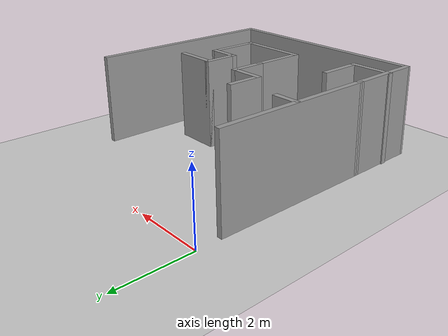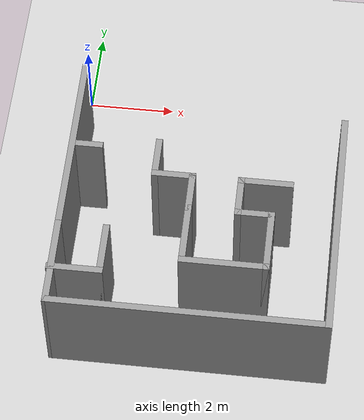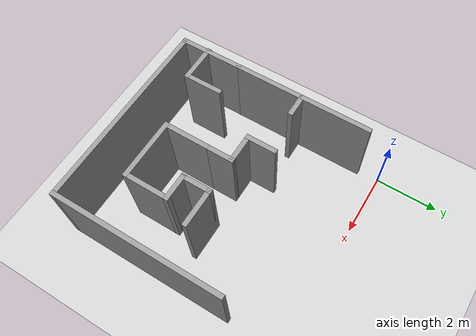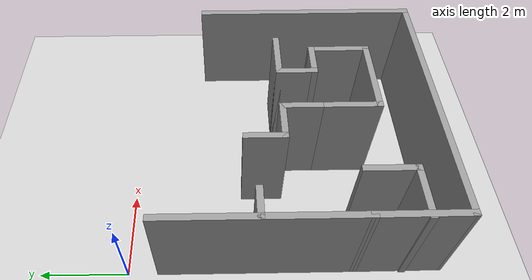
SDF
<sdf version="1.6">
 <world name="default">
  <model name="ground_plane">
   <static>1</static>
   <link name="link">
    <collision name="collision">
     <geometry><plane><normal>0 0 1</normal><size>100 100</size></plane></geometry>
     <surface>
      <contact><collide_bitmask>65535</collide_bitmask></contact>
      <friction><ode><mu>100</mu><mu2>50</mu2></ode></friction>
     </surface>
    </collision>
    <visual name="visual">
     <cast_shadows>0</cast_shadows>
     <geometry><plane><normal>0 0 1</normal><size>100 100</size></plane></geometry>
     <material>
      <script><uri>file://media/materials/scripts/gazebo.material</uri><name>Gazebo/Grey</name></script>
     </material>
    </visual>
   </link>
  </model>
  <model name="enclosed_wall_final">
   <link name="Wall_12">
    <pose>-1.30535 -0.736743 0 0 0 -1.5708</pose>
    <visual name="Wall_12_Visual">
     <pose>0 0 1.25 0 -0 0</pose>
     <geometry><box><size>1 0.15 2.5</size></box></geometry>
     <material>
      <script><uri>file://media/materials/scripts/gazebo.material</uri><name>Gazebo/Grey</name></script>
      <ambient>1 1 1 1</ambient>
      <shader type="pixel"/>
     </material>
     <meta><layer>0</layer></meta>
    </visual>
    <collision name="Wall_12_Collision">
     <pose>0 0 1.25 0 -0 0</pose>
     <geometry><box><size>1 0.15 2.5</size></box></geometry>
     <surface>
      <friction>
       <ode><mu>1</mu><mu2>1</mu2><fdir1>0 0 0</fdir1><slip1>0</slip1><slip2>0</slip2></ode>
       <torsional>
        <coefficient>1</coefficient>
        <patch_radius>0</patch_radius>
        <surface_radius>0</surface_radius>
        <use_patch_radius>1</use_patch_radius>
        <ode><slip>0</slip></ode>
       </torsional>
      </friction>
      <bounce><restitution_coefficient>0</restitution_coefficient><threshold>1e+06</threshold></bounce>
      <contact>
       <collide_without_contact>0</collide_without_contact>
       <collide_without_contact_bitmask>1</collide_without_contact_bitmask>
       <collide_bitmask>1</collide_bitmask>
       <ode>
        <soft_cfm>0</soft_cfm>
        <soft_erp>0.2</soft_erp>
        <kp>1e+13</kp>
        <kd>1</kd>
        <max_vel>0.01</max_vel>
        <min_depth>0</min_depth>
       </ode>
       <bullet>
        <split_impulse>1</split_impulse>
        <split_impulse_penetration_threshold>-0.01</split_impulse_penetration_threshold>
        <soft_cfm>0</soft_cfm>
        <soft_erp>0.2</soft_erp>
        <kp>1e+13</kp>
        <kd>1</kd>
       </bullet>
      </contact>
     </surface>
    </collision>
   </link>
   <link name="Wall_13">
    <pose>-0.880348 -1.16174 0 0 -0 0</pose>
    <visual name="Wall_13_Visual">
     <pose>0 0 1.25 0 -0 0</pose>
     <geometry><box><size>1 0.15 2.5</size></box></geometry>
     <material>
      <script><uri>file://media/materials/scripts/gazebo.material</uri><name>Gazebo/Grey</name></script>
      <ambient>1 1 1 1</ambient>
      <shader type="pixel"/>
     </material>
     <meta><layer>0</layer></meta>
    </visual>
    <collision name="Wall_13_Collision">
     <pose>0 0 1.25 0 -0 0</pose>
     <geometry><box><size>1 0.15 2.5</size></box></geometry>
     <surface>
      <friction>
       <ode><mu>1</mu><mu2>1</mu2><fdir1>0 0 0</fdir1><slip1>0</slip1><slip2>0</slip2></ode>
       <torsional>
        <coefficient>1</coefficient>
        <patch_radius>0</patch_radius>
        <surface_radius>0</surface_radius>
        <use_patch_radius>1</use_patch_radius>
        <ode><slip>0</slip></ode>
       </torsional>
      </friction>
      <bounce><restitution_coefficient>0</restitution_coefficient><threshold>1e+06</threshold></bounce>
      <contact>
       <collide_without_contact>0</collide_without_contact>
       <collide_without_contact_bitmask>1</collide_without_contact_bitmask>
       <collide_bitmask>1</collide_bitmask>
       <ode>
        <soft_cfm>0</soft_cfm>
        <soft_erp>0.2</soft_erp>
        <kp>1e+13</kp>
        <kd>1</kd>
        <max_vel>0.01</max_vel>
        <min_depth>0</min_depth>
       </ode>
       <bullet>
        <split_impulse>1</split_impulse>
        <split_impulse_penetration_threshold>-0.01</split_impulse_penetration_threshold>
        <soft_cfm>0</soft_cfm>
        <soft_erp>0.2</soft_erp>
        <kp>1e+13</kp>
        <kd>1</kd>
       </bullet>
      </contact>
     </surface>
    </collision>
   </link>
   <link name="Wall_14">
    <pose>-0.455348 -1.58674 0 0 0 -1.5708</pose>
    <visual name="Wall_14_Visual">
     <pose>0 0 1.25 0 -0 0</pose>
     <geometry><box><size>1 0.15 2.5</size></box></geometry>
     <material>
      <script><uri>file://media/materials/scripts/gazebo.material</uri><name>Gazebo/Grey</name></script>
      <ambient>1 1 1 1</ambient>
      <shader type="pixel"/>
     </material>
     <meta><layer>0</layer></meta>
    </visual>
    <collision name="Wall_14_Collision">
     <pose>0 0 1.25 0 -0 0</pose>
     <geometry><box><size>1 0.15 2.5</size></box></geometry>
     <surface>
      <friction>
       <ode><mu>1</mu><mu2>1</mu2><fdir1>0 0 0</fdir1><slip1>0</slip1><slip2>0</slip2></ode>
       <torsional>
        <coefficient>1</coefficient>
        <patch_radius>0</patch_radius>
        <surface_radius>0</surface_radius>
        <use_patch_radius>1</use_patch_radius>
        <ode><slip>0</slip></ode>
       </torsional>
      </friction>
      <bounce><restitution_coefficient>0</restitution_coefficient><threshold>1e+06</threshold></bounce>
      <contact>
       <collide_without_contact>0</collide_without_contact>
       <collide_without_contact_bitmask>1</collide_without_contact_bitmask>
       <collide_bitmask>1</collide_bitmask>
       <ode>
        <soft_cfm>0</soft_cfm>
        <soft_erp>0.2</soft_erp>
        <kp>1e+13</kp>
        <kd>1</kd>
        <max_vel>0.01</max_vel>
        <min_depth>0</min_depth>
       </ode>
       <bullet>
        <split_impulse>1</split_impulse>
        <split_impulse_penetration_threshold>-0.01</split_impulse_penetration_threshold>
        <soft_cfm>0</soft_cfm>
        <soft_erp>0.2</soft_erp>
        <kp>1e+13</kp>
        <kd>1</kd>
       </bullet>
      </contact>
     </surface>
    </collision>
   </link>
   <link name="Wall_16">
    <pose>0.644652 -1.58674 0 0 -0 1.5708</pose>
    <visual name="Wall_16_Visual">
     <pose>0 0 1.25 0 -0 0</pose>
     <geometry><box><size>1 0.15 2.5</size></box></geometry>
     <material>
      <script><uri>file://media/materials/scripts/gazebo.material</uri><name>Gazebo/Grey</name></script>
      <ambient>1 1 1 1</ambient>
      <shader type="pixel"/>
     </material>
     <meta><layer>0</layer></meta>
    </visual>
    <collision name="Wall_16_Collision">
     <pose>0 0 1.25 0 -0 0</pose>
     <geometry><box><size>1 0.15 2.5</size></box></geometry>
     <surface>
      <friction>
       <ode><mu>1</mu><mu2>1</mu2><fdir1>0 0 0</fdir1><slip1>0</slip1><slip2>0</slip2></ode>
       <torsional>
        <coefficient>1</coefficient>
        <patch_radius>0</patch_radius>
        <surface_radius>0</surface_radius>
        <use_patch_radius>1</use_patch_radius>
        <ode><slip>0</slip></ode>
       </torsional>
      </friction>
      <bounce><restitution_coefficient>0</restitution_coefficient><threshold>1e+06</threshold></bounce>
      <contact>
       <collide_without_contact>0</collide_without_contact>
       <collide_without_contact_bitmask>1</collide_without_contact_bitmask>
       <collide_bitmask>1</collide_bitmask>
       <ode>
        <soft_cfm>0</soft_cfm>
        <soft_erp>0.2</soft_erp>
        <kp>1e+13</kp>
        <kd>1</kd>
        <max_vel>0.01</max_vel>
        <min_depth>0</min_depth>
       </ode>
       <bullet>
        <split_impulse>1</split_impulse>
        <split_impulse_penetration_threshold>-0.01</split_impulse_penetration_threshold>
        <soft_cfm>0</soft_cfm>
        <soft_erp>0.2</soft_erp>
        <kp>1e+13</kp>
        <kd>1</kd>
       </bullet>
      </contact>
     </surface>
    </collision>
   </link>
   <link name="Wall_17">
    <pose>1.19465 -1.16174 0 0 -0 0</pose>
    <visual name="Wall_17_Visual">
     <pose>0 0 1.25 0 -0 0</pose>
     <geometry><box><size>1.25 0.15 2.5</size></box></geometry>
     <material>
      <script><uri>file://media/materials/scripts/gazebo.material</uri><name>Gazebo/Grey</name></script>
      <ambient>1 1 1 1</ambient>
      <shader type="pixel"/>
     </material>
     <meta><layer>0</layer></meta>
    </visual>
    <collision name="Wall_17_Collision">
     <pose>0 0 1.25 0 -0 0</pose>
     <geometry><box><size>1.25 0.15 2.5</size></box></geometry>
     <surface>
      <friction>
       <ode><mu>1</mu><mu2>1</mu2><fdir1>0 0 0</fdir1><slip1>0</slip1><slip2>0</slip2></ode>
       <torsional>
        <coefficient>1</coefficient>
        <patch_radius>0</patch_radius>
        <surface_radius>0</surface_radius>
        <use_patch_radius>1</use_patch_radius>
        <ode><slip>0</slip></ode>
       </torsional>
      </friction>
      <bounce><restitution_coefficient>0</restitution_coefficient><threshold>1e+06</threshold></bounce>
      <contact>
       <collide_without_contact>0</collide_without_contact>
       <collide_without_contact_bitmask>1</collide_without_contact_bitmask>
       <collide_bitmask>1</collide_bitmask>
       <ode>
        <soft_cfm>0</soft_cfm>
        <soft_erp>0.2</soft_erp>
        <kp>1e+13</kp>
        <kd>1</kd>
        <max_vel>0.01</max_vel>
        <min_depth>0</min_depth>
       </ode>
       <bullet>
        <split_impulse>1</split_impulse>
        <split_impulse_penetration_threshold>-0.01</split_impulse_penetration_threshold>
        <soft_cfm>0</soft_cfm>
        <soft_erp>0.2</soft_erp>
        <kp>1e+13</kp>
        <kd>1</kd>
       </bullet>
      </contact>
     </surface>
    </collision>
   </link>
   <link name="Wall_20">
    <pose>2.84465 -2.00196 0 0 0 -1.5708</pose>
    <visual name="Wall_20_Visual">
     <pose>0 0 1.25 0 -0 0</pose>
     <geometry><box><size>5.46957 0.15 2.5</size></box></geometry>
     <material>
      <script><uri>file://media/materials/scripts/gazebo.material</uri><name>Gazebo/Grey</name></script>
      <ambient>1 1 1 1</ambient>
      <shader type="pixel"/>
     </material>
     <meta><layer>0</layer></meta>
    </visual>
    <collision name="Wall_20_Collision">
     <pose>0 0 1.25 0 -0 0</pose>
     <geometry><box><size>5.46957 0.15 2.5</size></box></geometry>
     <surface>
      <friction>
       <ode><mu>1</mu><mu2>1</mu2><fdir1>0 0 0</fdir1><slip1>0</slip1><slip2>0</slip2></ode>
       <torsional>
        <coefficient>1</coefficient>
        <patch_radius>0</patch_radius>
        <surface_radius>0</surface_radius>
        <use_patch_radius>1</use_patch_radius>
        <ode><slip>0</slip></ode>
       </torsional>
      </friction>
      <bounce><restitution_coefficient>0</restitution_coefficient><threshold>1e+06</threshold></bounce>
      <contact>
       <collide_without_contact>0</collide_without_contact>
       <collide_without_contact_bitmask>1</collide_without_contact_bitmask>
       <collide_bitmask>1</collide_bitmask>
       <ode>
        <soft_cfm>0</soft_cfm>
        <soft_erp>0.2</soft_erp>
        <kp>1e+13</kp>
        <kd>1</kd>
        <max_vel>0.01</max_vel>
        <min_depth>0</min_depth>
       </ode>
       <bullet>
        <split_impulse>1</split_impulse>
        <split_impulse_penetration_threshold>-0.01</split_impulse_penetration_threshold>
        <soft_cfm>0</soft_cfm>
        <soft_erp>0.2</soft_erp>
        <kp>1e+13</kp>
        <kd>1</kd>
       </bullet>
      </contact>
     </surface>
    </collision>
   </link>
   <link name="Wall_21">
    <pose>-0.205348 -4.66174 0 0 -0 3.14159</pose>
    <visual name="Wall_21_Visual">
     <pose>0 0 1.25 0 -0 0</pose>
     <geometry><box><size>6.25 0.15 2.5</size></box></geometry>
     <material>
      <script><uri>file://media/materials/scripts/gazebo.material</uri><name>Gazebo/Grey</name></script>
      <ambient>1 1 1 1</ambient>
      <shader type="pixel"/>
     </material>
     <meta><layer>0</layer></meta>
    </visual>
    <collision name="Wall_21_Collision">
     <pose>0 0 1.25 0 -0 0</pose>
     <geometry><box><size>6.25 0.15 2.5</size></box></geometry>
     <surface>
      <friction>
       <ode><mu>1</mu><mu2>1</mu2><fdir1>0 0 0</fdir1><slip1>0</slip1><slip2>0</slip2></ode>
       <torsional>
        <coefficient>1</coefficient>
        <patch_radius>0</patch_radius>
        <surface_radius>0</surface_radius>
        <use_patch_radius>1</use_patch_radius>
        <ode><slip>0</slip></ode>
       </torsional>
      </friction>
      <bounce><restitution_coefficient>0</restitution_coefficient><threshold>1e+06</threshold></bounce>
      <contact>
       <collide_without_contact>0</collide_without_contact>
       <collide_without_contact_bitmask>1</collide_without_contact_bitmask>
       <collide_bitmask>1</collide_bitmask>
       <ode>
        <soft_cfm>0</soft_cfm>
        <soft_erp>0.2</soft_erp>
        <kp>1e+13</kp>
        <kd>1</kd>
        <max_vel>0.01</max_vel>
        <min_depth>0</min_depth>
       </ode>
       <bullet>
        <split_impulse>1</split_impulse>
        <split_impulse_penetration_threshold>-0.01</split_impulse_penetration_threshold>
        <soft_cfm>0</soft_cfm>
        <soft_erp>0.2</soft_erp>
        <kp>1e+13</kp>
        <kd>1</kd>
       </bullet>
      </contact>
     </surface>
    </collision>
   </link>
   <link name="Wall_22">
    <pose>-3.25992 -3.68967 0 0 -0 1.5755</pose>
    <visual name="Wall_22_Visual">
     <pose>0 0 1.25 0 -0 0</pose>
     <geometry><box><size>2.09416 0.15 2.5</size></box></geometry>
     <material>
      <script><uri>file://media/materials/scripts/gazebo.material</uri><name>Gazebo/Grey</name></script>
      <ambient>1 1 1 1</ambient>
      <shader type="pixel"/>
     </material>
     <meta><layer>0</layer></meta>
    </visual>
    <collision name="Wall_22_Collision">
     <pose>0 0 1.25 0 -0 0</pose>
     <geometry><box><size>2.09416 0.15 2.5</size></box></geometry>
     <surface>
      <friction>
       <ode><mu>1</mu><mu2>1</mu2><fdir1>0 0 0</fdir1><slip1>0</slip1><slip2>0</slip2></ode>
       <torsional>
        <coefficient>1</coefficient>
        <patch_radius>0</patch_radius>
        <surface_radius>0</surface_radius>
        <use_patch_radius>1</use_patch_radius>
        <ode><slip>0</slip></ode>
       </torsional>
      </friction>
      <bounce><restitution_coefficient>0</restitution_coefficient><threshold>1e+06</threshold></bounce>
      <contact>
       <collide_without_contact>0</collide_without_contact>
       <collide_without_contact_bitmask>1</collide_without_contact_bitmask>
       <collide_bitmask>1</collide_bitmask>
       <ode>
        <soft_cfm>0</soft_cfm>
        <soft_erp>0.2</soft_erp>
        <kp>1e+13</kp>
        <kd>1</kd>
        <max_vel>0.01</max_vel>
        <min_depth>0</min_depth>
       </ode>
       <bullet>
        <split_impulse>1</split_impulse>
        <split_impulse_penetration_threshold>-0.01</split_impulse_penetration_threshold>
        <soft_cfm>0</soft_cfm>
        <soft_erp>0.2</soft_erp>
        <kp>1e+13</kp>
        <kd>1</kd>
       </bullet>
      </contact>
     </surface>
    </collision>
   </link>
   <link name="Wall_37">
    <pose>-2.74221 -3.82821 0 0 -0 0</pose>
    <visual name="Wall_37_Visual">
     <pose>0 0 1.25 0 -0 0</pose>
     <geometry><box><size>1.25 0.15 2.5</size></box></geometry>
     <material>
      <script><uri>file://media/materials/scripts/gazebo.material</uri><name>Gazebo/Grey</name></script>
      <ambient>1 1 1 1</ambient>
      <shader type="pixel"/>
     </material>
     <meta><layer>0</layer></meta>
    </visual>
    <collision name="Wall_37_Collision">
     <pose>0 0 1.25 0 -0 0</pose>
     <geometry><box><size>1.25 0.15 2.5</size></box></geometry>
     <surface>
      <friction>
       <ode><mu>1</mu><mu2>1</mu2><fdir1>0 0 0</fdir1><slip1>0</slip1><slip2>0</slip2></ode>
       <torsional>
        <coefficient>1</coefficient>
        <patch_radius>0</patch_radius>
        <surface_radius>0</surface_radius>
        <use_patch_radius>1</use_patch_radius>
        <ode><slip>0</slip></ode>
       </torsional>
      </friction>
      <bounce><restitution_coefficient>0</restitution_coefficient><threshold>1e+06</threshold></bounce>
      <contact>
       <collide_without_contact>0</collide_without_contact>
       <collide_without_contact_bitmask>1</collide_without_contact_bitmask>
       <collide_bitmask>1</collide_bitmask>
       <ode>
        <soft_cfm>0</soft_cfm>
        <soft_erp>0.2</soft_erp>
        <kp>1e+13</kp>
        <kd>1</kd>
        <max_vel>0.01</max_vel>
        <min_depth>0</min_depth>
       </ode>
       <bullet>
        <split_impulse>1</split_impulse>
        <split_impulse_penetration_threshold>-0.01</split_impulse_penetration_threshold>
        <soft_cfm>0</soft_cfm>
        <soft_erp>0.2</soft_erp>
        <kp>1e+13</kp>
        <kd>1</kd>
       </bullet>
      </contact>
     </surface>
    </collision>
   </link>
   <link name="Wall_38">
    <pose>-2.19221 -3.27821 0 0 -0 1.5708</pose>
    <visual name="Wall_38_Visual">
     <pose>0 0 1.25 0 -0 0</pose>
     <geometry><box><size>1.25 0.15 2.5</size></box></geometry>
     <material>
      <script><uri>file://media/materials/scripts/gazebo.material</uri><name>Gazebo/Grey</name></script>
      <ambient>1 1 1 1</ambient>
      <shader type="pixel"/>
     </material>
     <meta><layer>0</layer></meta>
    </visual>
    <collision name="Wall_38_Collision">
     <pose>0 0 1.25 0 -0 0</pose>
     <geometry><box><size>1.25 0.15 2.5</size></box></geometry>
     <surface>
      <friction>
       <ode><mu>1</mu><mu2>1</mu2><fdir1>0 0 0</fdir1><slip1>0</slip1><slip2>0</slip2></ode>
       <torsional>
        <coefficient>1</coefficient>
        <patch_radius>0</patch_radius>
        <surface_radius>0</surface_radius>
        <use_patch_radius>1</use_patch_radius>
        <ode><slip>0</slip></ode>
       </torsional>
      </friction>
      <bounce><restitution_coefficient>0</restitution_coefficient><threshold>1e+06</threshold></bounce>
      <contact>
       <collide_without_contact>0</collide_without_contact>
       <collide_without_contact_bitmask>1</collide_without_contact_bitmask>
       <collide_bitmask>1</collide_bitmask>
       <ode>
        <soft_cfm>0</soft_cfm>
        <soft_erp>0.2</soft_erp>
        <kp>1e+13</kp>
        <kd>1</kd>
        <max_vel>0.01</max_vel>
        <min_depth>0</min_depth>
       </ode>
       <bullet>
        <split_impulse>1</split_impulse>
        <split_impulse_penetration_threshold>-0.01</split_impulse_penetration_threshold>
        <soft_cfm>0</soft_cfm>
        <soft_erp>0.2</soft_erp>
        <kp>1e+13</kp>
        <kd>1</kd>
       </bullet>
      </contact>
     </surface>
    </collision>
   </link>
   <link name="Wall_40">
    <pose>-0.455348 -2.68674 0 0 0 -1.5708</pose>
    <visual name="Wall_40_Visual">
     <pose>0 0 1.25 0 -0 0</pose>
     <geometry><box><size>1.5 0.15 2.5</size></box></geometry>
     <material>
      <script><uri>file://media/materials/scripts/gazebo.material</uri><name>Gazebo/Grey</name></script>
      <ambient>1 1 1 1</ambient>
      <shader type="pixel"/>
     </material>
     <meta><layer>0</layer></meta>
    </visual>
    <collision name="Wall_40_Collision">
     <pose>0 0 1.25 0 -0 0</pose>
     <geometry><box><size>1.5 0.15 2.5</size></box></geometry>
     <surface>
      <friction>
       <ode><mu>1</mu><mu2>1</mu2><fdir1>0 0 0</fdir1><slip1>0</slip1><slip2>0</slip2></ode>
       <torsional>
        <coefficient>1</coefficient>
        <patch_radius>0</patch_radius>
        <surface_radius>0</surface_radius>
        <use_patch_radius>1</use_patch_radius>
        <ode><slip>0</slip></ode>
       </torsional>
      </friction>
      <bounce><restitution_coefficient>0</restitution_coefficient><threshold>1e+06</threshold></bounce>
      <contact>
       <collide_without_contact>0</collide_without_contact>
       <collide_without_contact_bitmask>1</collide_without_contact_bitmask>
       <collide_bitmask>1</collide_bitmask>
       <ode>
        <soft_cfm>0</soft_cfm>
        <soft_erp>0.2</soft_erp>
        <kp>1e+13</kp>
        <kd>1</kd>
        <max_vel>0.01</max_vel>
        <min_depth>0</min_depth>
       </ode>
       <bullet>
        <split_impulse>1</split_impulse>
        <split_impulse_penetration_threshold>-0.01</split_impulse_penetration_threshold>
        <soft_cfm>0</soft_cfm>
        <soft_erp>0.2</soft_erp>
        <kp>1e+13</kp>
        <kd>1</kd>
       </bullet>
      </contact>
     </surface>
    </collision>
   </link>
   <link name="Wall_41">
    <pose>0.469652 -3.36174 0 0 -0 0</pose>
    <visual name="Wall_41_Visual">
     <pose>0 0 1.25 0 -0 0</pose>
     <geometry><box><size>2 0.15 2.5</size></box></geometry>
     <material>
      <script><uri>file://media/materials/scripts/gazebo.material</uri><name>Gazebo/Grey</name></script>
      <ambient>1 1 1 1</ambient>
      <shader type="pixel"/>
     </material>
     <meta><layer>0</layer></meta>
    </visual>
    <collision name="Wall_41_Collision">
     <pose>0 0 1.25 0 -0 0</pose>
     <geometry><box><size>2 0.15 2.5</size></box></geometry>
     <surface>
      <friction>
       <ode><mu>1</mu><mu2>1</mu2><fdir1>0 0 0</fdir1><slip1>0</slip1><slip2>0</slip2></ode>
       <torsional>
        <coefficient>1</coefficient>
        <patch_radius>0</patch_radius>
        <surface_radius>0</surface_radius>
        <use_patch_radius>1</use_patch_radius>
        <ode><slip>0</slip></ode>
       </torsional>
      </friction>
      <bounce><restitution_coefficient>0</restitution_coefficient><threshold>1e+06</threshold></bounce>
      <contact>
       <collide_without_contact>0</collide_without_contact>
       <collide_without_contact_bitmask>1</collide_without_contact_bitmask>
       <collide_bitmask>1</collide_bitmask>
       <ode>
        <soft_cfm>0</soft_cfm>
        <soft_erp>0.2</soft_erp>
        <kp>1e+13</kp>
        <kd>1</kd>
        <max_vel>0.01</max_vel>
        <min_depth>0</min_depth>
       </ode>
       <bullet>
        <split_impulse>1</split_impulse>
        <split_impulse_penetration_threshold>-0.01</split_impulse_penetration_threshold>
        <soft_cfm>0</soft_cfm>
        <soft_erp>0.2</soft_erp>
        <kp>1e+13</kp>
        <kd>1</kd>
       </bullet>
      </contact>
     </surface>
    </collision>
   </link>
   <link name="Wall_42">
    <pose>1.39465 -2.68674 0 0 -0 1.5708</pose>
    <visual name="Wall_42_Visual">
     <pose>0 0 1.25 0 -0 0</pose>
     <geometry><box><size>1.5 0.15 2.5</size></box></geometry>
     <material>
      <script><uri>file://media/materials/scripts/gazebo.material</uri><name>Gazebo/Grey</name></script>
      <ambient>1 1 1 1</ambient>
      <shader type="pixel"/>
     </material>
     <meta><layer>0</layer></meta>
    </visual>
    <collision name="Wall_42_Collision">
     <pose>0 0 1.25 0 -0 0</pose>
     <geometry><box><size>1.5 0.15 2.5</size></box></geometry>
     <surface>
      <friction>
       <ode><mu>1</mu><mu2>1</mu2><fdir1>0 0 0</fdir1><slip1>0</slip1><slip2>0</slip2></ode>
       <torsional>
        <coefficient>1</coefficient>
        <patch_radius>0</patch_radius>
        <surface_radius>0</surface_radius>
        <use_patch_radius>1</use_patch_radius>
        <ode><slip>0</slip></ode>
       </torsional>
      </friction>
      <bounce><restitution_coefficient>0</restitution_coefficient><threshold>1e+06</threshold></bounce>
      <contact>
       <collide_without_contact>0</collide_without_contact>
       <collide_without_contact_bitmask>1</collide_without_contact_bitmask>
       <collide_bitmask>1</collide_bitmask>
       <ode>
        <soft_cfm>0</soft_cfm>
        <soft_erp>0.2</soft_erp>
        <kp>1e+13</kp>
        <kd>1</kd>
        <max_vel>0.01</max_vel>
        <min_depth>0</min_depth>
       </ode>
       <bullet>
        <split_impulse>1</split_impulse>
        <split_impulse_penetration_threshold>-0.01</split_impulse_penetration_threshold>
        <soft_cfm>0</soft_cfm>
        <soft_erp>0.2</soft_erp>
        <kp>1e+13</kp>
        <kd>1</kd>
       </bullet>
      </contact>
     </surface>
    </collision>
   </link>
   <link name="Wall_43">
    <pose>1.01965 -2.01174 0 0 -0 3.14159</pose>
    <visual name="Wall_43_Visual">
     <pose>0 0 1.25 0 -0 0</pose>
     <geometry><box><size>0.9 0.15 2.5</size></box></geometry>
     <material>
      <script><uri>file://media/materials/scripts/gazebo.material</uri><name>Gazebo/Grey</name></script>
      <ambient>1 1 1 1</ambient>
      <shader type="pixel"/>
     </material>
     <meta><layer>0</layer></meta>
    </visual>
    <collision name="Wall_43_Collision">
     <pose>0 0 1.25 0 -0 0</pose>
     <geometry><box><size>0.9 0.15 2.5</size></box></geometry>
     <surface>
      <friction>
       <ode><mu>1</mu><mu2>1</mu2><fdir1>0 0 0</fdir1><slip1>0</slip1><slip2>0</slip2></ode>
       <torsional>
        <coefficient>1</coefficient>
        <patch_radius>0</patch_radius>
        <surface_radius>0</surface_radius>
        <use_patch_radius>1</use_patch_radius>
        <ode><slip>0</slip></ode>
       </torsional>
      </friction>
      <bounce><restitution_coefficient>0</restitution_coefficient><threshold>1e+06</threshold></bounce>
      <contact>
       <collide_without_contact>0</collide_without_contact>
       <collide_without_contact_bitmask>1</collide_without_contact_bitmask>
       <collide_bitmask>1</collide_bitmask>
       <ode>
        <soft_cfm>0</soft_cfm>
        <soft_erp>0.2</soft_erp>
        <kp>1e+13</kp>
        <kd>1</kd>
        <max_vel>0.01</max_vel>
        <min_depth>0</min_depth>
       </ode>
       <bullet>
        <split_impulse>1</split_impulse>
        <split_impulse_penetration_threshold>-0.01</split_impulse_penetration_threshold>
        <soft_cfm>0</soft_cfm>
        <soft_erp>0.2</soft_erp>
        <kp>1e+13</kp>
        <kd>1</kd>
       </bullet>
      </contact>
     </surface>
    </collision>
   </link>
   <link name="Wall_57">
    <pose>-2.93526 -0.534092 0 0 -0 0</pose>
    <visual name="Wall_57_Visual">
     <pose>0 0 1.25 0 -0 0</pose>
     <geometry><box><size>0.75 0.15 2.5</size></box></geometry>
     <material>
      <script><uri>file://media/materials/scripts/gazebo.material</uri><name>Gazebo/Grey</name></script>
      <ambient>1 1 1 1</ambient>
      <shader type="pixel"/>
     </material>
     <meta><layer>0</layer></meta>
    </visual>
    <collision name="Wall_57_Collision">
     <pose>0 0 1.25 0 -0 0</pose>
     <geometry><box><size>0.75 0.15 2.5</size></box></geometry>
     <surface>
      <friction>
       <ode><mu>1</mu><mu2>1</mu2><fdir1>0 0 0</fdir1><slip1>0</slip1><slip2>0</slip2></ode>
       <torsional>
        <coefficient>1</coefficient>
        <patch_radius>0</patch_radius>
        <surface_radius>0</surface_radius>
        <use_patch_radius>1</use_patch_radius>
        <ode><slip>0</slip></ode>
       </torsional>
      </friction>
      <bounce><restitution_coefficient>0</restitution_coefficient><threshold>1e+06</threshold></bounce>
      <contact>
       <collide_without_contact>0</collide_without_contact>
       <collide_without_contact_bitmask>1</collide_without_contact_bitmask>
       <collide_bitmask>1</collide_bitmask>
       <ode>
        <soft_cfm>0</soft_cfm>
        <soft_erp>0.2</soft_erp>
        <kp>1e+13</kp>
        <kd>1</kd>
        <max_vel>0.01</max_vel>
        <min_depth>0</min_depth>
       </ode>
       <bullet>
        <split_impulse>1</split_impulse>
        <split_impulse_penetration_threshold>-0.01</split_impulse_penetration_threshold>
        <soft_cfm>0</soft_cfm>
        <soft_erp>0.2</soft_erp>
        <kp>1e+13</kp>
        <kd>1</kd>
       </bullet>
      </contact>
     </surface>
    </collision>
   </link>
   <link name="Wall_9">
    <pose>-3.26449 -0.542608 0 0 0 -1.5708</pose>
    <visual name="Wall_9_Visual">
     <pose>0 0 1.25 0 -0 0</pose>
     <geometry><box><size>4.5 0.15 2.5</size></box></geometry>
     <material>
      <script><uri>file://media/materials/scripts/gazebo.material</uri><name>Gazebo/Grey</name></script>
      <ambient>1 1 1 1</ambient>
      <shader type="pixel"/>
     </material>
     <meta><layer>0</layer></meta>
    </visual>
    <collision name="Wall_9_Collision">
     <pose>0 0 1.25 0 -0 0</pose>
     <geometry><box><size>4.5 0.15 2.5</size></box></geometry>
     <surface>
      <friction>
       <ode><mu>1</mu><mu2>1</mu2><fdir1>0 0 0</fdir1><slip1>0</slip1><slip2>0</slip2></ode>
       <torsional>
        <coefficient>1</coefficient>
        <patch_radius>0</patch_radius>
        <surface_radius>0</surface_radius>
        <use_patch_radius>1</use_patch_radius>
        <ode><slip>0</slip></ode>
       </torsional>
      </friction>
      <bounce><restitution_coefficient>0</restitution_coefficient><threshold>1e+06</threshold></bounce>
      <contact>
       <collide_without_contact>0</collide_without_contact>
       <collide_without_contact_bitmask>1</collide_without_contact_bitmask>
       <collide_bitmask>1</collide_bitmask>
       <ode>
        <soft_cfm>0</soft_cfm>
        <soft_erp>0.2</soft_erp>
        <kp>1e+13</kp>
        <kd>1</kd>
        <max_vel>0.01</max_vel>
        <min_depth>0</min_depth>
       </ode>
       <bullet>
        <split_impulse>1</split_impulse>
        <split_impulse_penetration_threshold>-0.01</split_impulse_penetration_threshold>
        <soft_cfm>0</soft_cfm>
        <soft_erp>0.2</soft_erp>
        <kp>1e+13</kp>
        <kd>1</kd>
       </bullet>
      </contact>
     </surface>
    </collision>
   </link>
   <static>1</static>
   <pose>3.32683 -2.371 0 0 -0 0</pose>
  </model>
 </world>
</sdf>
